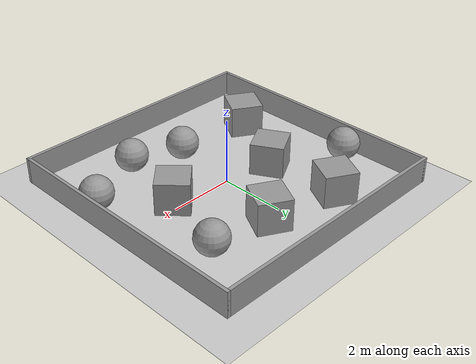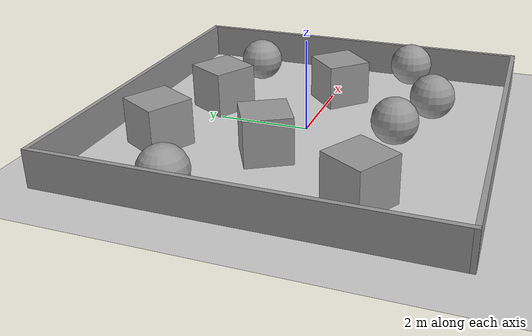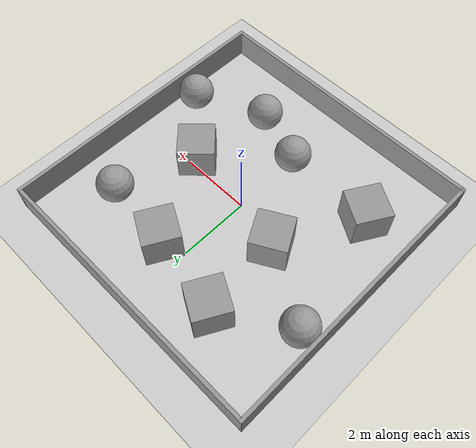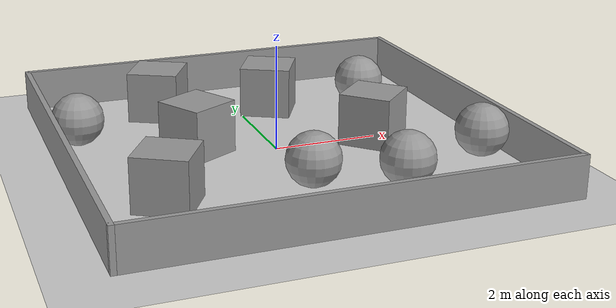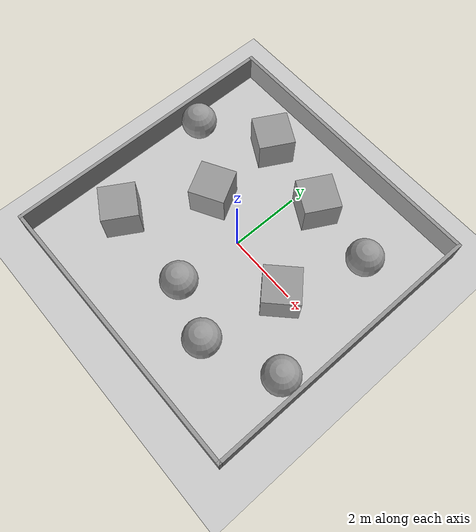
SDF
<sdf version="1.6">
 <world name="default">
  <light name="sun" type="directional">
   <pose>0 0 10 0 -0 0</pose>
   <diffuse>0.8 0.8 0.8 1</diffuse>
   <specular>0.1 0.1 0.1 1</specular>
   <attenuation>
    <range>1000</range>
    <constant>0.9</constant>
    <linear>0.01</linear>
    <quadratic>0.001</quadratic>
   </attenuation>
   <direction>-0.5 0.5 -1</direction>
  </light>
  <model name="ground_plane">
   <static>1</static>
   <link name="link">
    <collision name="collision">
     <geometry><plane><normal>0 0 1</normal><size>100 100</size></plane></geometry>
     <surface><friction><ode><mu>100</mu><mu2>50</mu2></ode></friction></surface>
    </collision>
    <visual name="visual">
     <cast_shadows>0</cast_shadows>
     <geometry><plane><normal>0 0 1</normal><size>100 100</size></plane></geometry>
     <material>
      <script><uri>file://media/materials/scripts/gazebo.material</uri><name>Gazebo/Grey</name></script>
     </material>
    </visual>
   </link>
  </model>
  <gravity>0 0 -9.8</gravity>
  <magnetic_field>6e-06 2.3e-05 -4.2e-05</magnetic_field>
  <atmosphere type="adiabatic"/>
  <physics name="default_physics" default="0" type="ode">
   <max_step_size>0.001</max_step_size>
   <real_time_factor>1</real_time_factor>
   <real_time_update_rate>1000</real_time_update_rate>
  </physics>
  <scene><ambient>0.4 0.4 0.4 1</ambient><background>0.7 0.7 0.7 1</background><shadows>1</shadows></scene>
  <spherical_coordinates>
   <surface_model>EARTH_WGS84</surface_model>
   <latitude_deg>0</latitude_deg>
   <longitude_deg>0</longitude_deg>
   <elevation>0</elevation>
   <heading_deg>0</heading_deg>
  </spherical_coordinates>
  <model name="train_world1">
   <link name="Wall_0">
    <collision name="Wall_0_Collision">
     <geometry><box><size>8.1 0.1 0.8</size></box></geometry>
     <pose>0 0 0.4 0 -0 0</pose>
    </collision>
    <visual name="Wall_0_Visual">
     <pose>0 0 0.4 0 -0 0</pose>
     <geometry><box><size>8.1 0.1 0.8</size></box></geometry>
     <material>
      <script><uri>file://media/materials/scripts/gazebo.material</uri><name>Gazebo/Grey</name></script>
      <ambient>1 1 1 1</ambient>
     </material>
    </visual>
    <pose>4 0 0 0 0 -1.5708</pose>
   </link>
   <link name="Wall_1">
    <collision name="Wall_1_Collision">
     <geometry><box><size>8.10002 0.1 0.8</size></box></geometry>
     <pose>0 0 0.4 0 -0 0</pose>
    </collision>
    <visual name="Wall_1_Visual">
     <pose>0 0 0.4 0 -0 0</pose>
     <geometry><box><size>8.10002 0.1 0.8</size></box></geometry>
     <material>
      <script><uri>file://media/materials/scripts/gazebo.material</uri><name>Gazebo/Grey</name></script>
      <ambient>1 1 1 1</ambient>
     </material>
    </visual>
    <pose>0 -4 0 0 -0 3.14159</pose>
   </link>
   <link name="Wall_2">
    <collision name="Wall_2_Collision">
     <geometry><box><size>8.1 0.1 0.8</size></box></geometry>
     <pose>0 0 0.4 0 -0 0</pose>
    </collision>
    <visual name="Wall_2_Visual">
     <pose>0 0 0.4 0 -0 0</pose>
     <geometry><box><size>8.1 0.1 0.8</size></box></geometry>
     <material>
      <script><uri>file://media/materials/scripts/gazebo.material</uri><name>Gazebo/Grey</name></script>
      <ambient>1 1 1 1</ambient>
     </material>
    </visual>
    <pose>-4 0 0 0 -0 1.5708</pose>
   </link>
   <link name="Wall_3">
    <collision name="Wall_3_Collision">
     <geometry><box><size>8.1 0.1 0.8</size></box></geometry>
     <pose>0 0 0.4 0 -0 0</pose>
    </collision>
    <visual name="Wall_3_Visual">
     <pose>0 0 0.4 0 -0 0</pose>
     <geometry><box><size>8.1 0.1 0.8</size></box></geometry>
     <material>
      <script><uri>file://media/materials/scripts/gazebo.material</uri><name>Gazebo/Grey</name></script>
      <ambient>1 1 1 1</ambient>
     </material>
    </visual>
    <pose>0 4 0 0 -0 0</pose>
   </link>
   <static>1</static>
  </model>
  <model name="unit_box">
   <pose>-2.59875 -1.85491 0.499996 9e-06 1e-06 -0.53512</pose>
   <link name="link">
    <inertial>
     <mass>1</mass>
     <inertia>
      <ixx>0.166667</ixx>
      <ixy>0</ixy>
      <ixz>0</ixz>
      <iyy>0.166667</iyy>
      <iyz>0</iyz>
      <izz>0.166667</izz>
     </inertia>
    </inertial>
    <collision name="collision"><geometry><box><size>1 1 1</size></box></geometry></collision>
    <visual name="visual">
     <geometry><box><size>1 1 1</size></box></geometry>
     <material>
      <script><name>Gazebo/Grey</name><uri>file://media/materials/scripts/gazebo.material</uri></script>
     </material>
    </visual>
   </link>
  </model>
  <model name="unit_box_0">
   <pose>-1.43679 0.374677 0.5 0 -0 0.508382</pose>
   <link name="link">
    <inertial>
     <mass>1</mass>
     <inertia>
      <ixx>0.166667</ixx>
      <ixy>0</ixy>
      <ixz>0</ixz>
      <iyy>0.166667</iyy>
      <iyz>0</iyz>
      <izz>0.166667</izz>
     </inertia>
    </inertial>
    <collision name="collision"><geometry><box><size>1 1 1</size></box></geometry></collision>
    <visual name="visual">
     <geometry><box><size>1 1 1</size></box></geometry>
     <material>
      <script><name>Gazebo/Grey</name><uri>file://media/materials/scripts/gazebo.material</uri></script>
     </material>
    </visual>
   </link>
  </model>
  <model name="unit_sphere">
   <pose>-0.034736 -1.93216 0.5 0 -0 0</pose>
   <link name="link">
    <inertial>
     <mass>1</mass>
     <inertia><ixx>0.1</ixx><ixy>0</ixy><ixz>0</ixz><iyy>0.1</iyy><iyz>0</iyz><izz>0.1</izz></inertia>
    </inertial>
    <collision name="collision"><geometry><sphere><radius>0.5</radius></sphere></geometry></collision>
    <visual name="visual">
     <geometry><sphere><radius>0.5</radius></sphere></geometry>
     <material>
      <script><name>Gazebo/Grey</name><uri>file://media/materials/scripts/gazebo.material</uri></script>
     </material>
    </visual>
   </link>
  </model>
  <model name="unit_sphere_0">
   <pose>1.50669 -2.45306 0.5 0 -0 0</pose>
   <link name="link">
    <inertial>
     <mass>1</mass>
     <inertia><ixx>0.1</ixx><ixy>0</ixy><ixz>0</ixz><iyy>0.1</iyy><iyz>0</iyz><izz>0.1</izz></inertia>
    </inertial>
    <collision name="collision"><geometry><sphere><radius>0.5</radius></sphere></geometry></collision>
    <visual name="visual">
     <geometry><sphere><radius>0.5</radius></sphere></geometry>
     <material>
      <script><name>Gazebo/Grey</name><uri>file://media/materials/scripts/gazebo.material</uri></script>
     </material>
    </visual>
   </link>
  </model>
  <model name="unit_box_1">
   <pose>0.644905 2.24118 0.5 -0 -0 -0.500599</pose>
   <link name="link">
    <inertial>
     <mass>1</mass>
     <inertia>
      <ixx>0.166667</ixx>
      <ixy>0</ixy>
      <ixz>0</ixz>
      <iyy>0.166667</iyy>
      <iyz>0</iyz>
      <izz>0.166667</izz>
     </inertia>
    </inertial>
    <collision name="collision"><geometry><box><size>1 1 1</size></box></geometry></collision>
    <visual name="visual">
     <geometry><box><size>1 1 1</size></box></geometry>
     <material>
      <script><name>Gazebo/Grey</name><uri>file://media/materials/scripts/gazebo.material</uri></script>
     </material>
    </visual>
   </link>
  </model>
  <model name="unit_box_1_clone">
   <pose>-1.58559 2.67123 0.5 0 -0 -0.500608</pose>
   <link name="link">
    <inertial>
     <mass>1</mass>
     <inertia>
      <ixx>0.166667</ixx>
      <ixy>0</ixy>
      <ixz>0</ixz>
      <iyy>0.166667</iyy>
      <iyz>0</iyz>
      <izz>0.166667</izz>
     </inertia>
    </inertial>
    <collision name="collision"><geometry><box><size>1 1 1</size></box></geometry></collision>
    <visual name="visual">
     <geometry><box><size>1 1 1</size></box></geometry>
     <material>
      <script><name>Gazebo/Grey</name><uri>file://media/materials/scripts/gazebo.material</uri></script>
     </material>
    </visual>
   </link>
  </model>
  <model name="unit_box_2">
   <pose>1.88973 -0.191204 0.5 0 0 -0.796488</pose>
   <link name="link">
    <inertial>
     <mass>1</mass>
     <inertia>
      <ixx>0.166667</ixx>
      <ixy>0</ixy>
      <ixz>0</ixz>
      <iyy>0.166667</iyy>
      <iyz>0</iyz>
      <izz>0.166667</izz>
     </inertia>
    </inertial>
    <collision name="collision"><geometry><box><size>1 1 1</size></box></geometry></collision>
    <visual name="visual">
     <geometry><box><size>1 1 1</size></box></geometry>
     <material>
      <script><name>Gazebo/Grey</name><uri>file://media/materials/scripts/gazebo.material</uri></script>
     </material>
    </visual>
   </link>
  </model>
  <model name="unit_sphere_1">
   <pose>2.61447 2.0729 0.5 0 -0 0</pose>
   <link name="link">
    <inertial>
     <mass>1</mass>
     <inertia><ixx>0.1</ixx><ixy>0</ixy><ixz>0</ixz><iyy>0.1</iyy><iyz>0</iyz><izz>0.1</izz></inertia>
    </inertial>
    <collision name="collision"><geometry><sphere><radius>0.5</radius></sphere></geometry></collision>
    <visual name="visual">
     <geometry><sphere><radius>0.5</radius></sphere></geometry>
     <material>
      <script><name>Gazebo/Grey</name><uri>file://media/materials/scripts/gazebo.material</uri></script>
     </material>
    </visual>
   </link>
  </model>
  <model name="unit_sphere_2">
   <pose>3.44366 -1.60372 0.5 -1e-06 -0.012859 0</pose>
   <link name="link">
    <inertial>
     <mass>1</mass>
     <inertia><ixx>0.1</ixx><ixy>0</ixy><ixz>0</ixz><iyy>0.1</iyy><iyz>0</iyz><izz>0.1</izz></inertia>
    </inertial>
    <collision name="collision"><geometry><sphere><radius>0.5</radius></sphere></geometry></collision>
    <visual name="visual">
     <geometry><sphere><radius>0.5</radius></sphere></geometry>
     <material>
      <script><name>Gazebo/Grey</name><uri>file://media/materials/scripts/gazebo.material</uri></script>
     </material>
    </visual>
   </link>
  </model>
  <model name="unit_sphere_clone">
   <pose>-3.44385 1.53764 0.5 0 0.012384 0</pose>
   <link name="link">
    <inertial>
     <mass>1</mass>
     <inertia><ixx>0.1</ixx><ixy>0</ixy><ixz>0</ixz><iyy>0.1</iyy><iyz>0</iyz><izz>0.1</izz></inertia>
    </inertial>
    <collision name="collision"><geometry><sphere><radius>0.5</radius></sphere></geometry></collision>
    <visual name="visual">
     <geometry><sphere><radius>0.5</radius></sphere></geometry>
     <material>
      <script><name>Gazebo/Grey</name><uri>file://media/materials/scripts/gazebo.material</uri></script>
     </material>
    </visual>
   </link>
  </model>
 </world>
</sdf>
